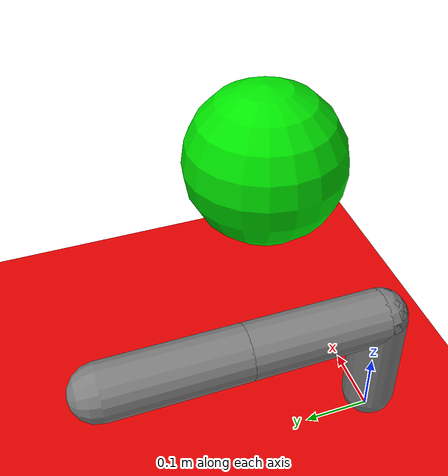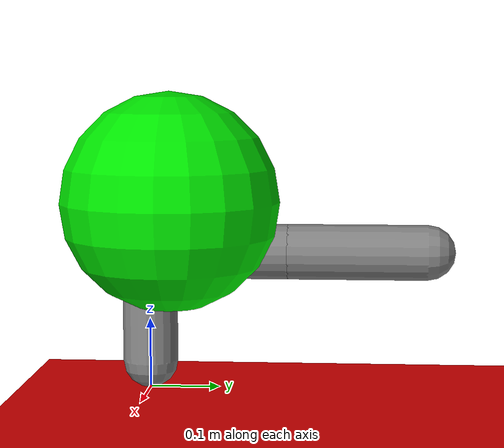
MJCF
<mujoco>
    <compiler inertiafromgeom='true' angle='degree'/>
    <option timestep='0.005'>
        <flags solverstat="enable" energy="enable"/>
    </option>

     <default>
        <position ctrlrange='-2 2' ctrllimited='true'/>
        <joint damping='0.5' armature='1.0068' />
    </default>

    <worldbody>
        <light diffuse=".5 .5 .5" pos="0 0 3" dir="0 0 -1"/>
        <geom type="plane" size="1.1 1.1 1.1" rgba=".9 0 0 1"/>
        <body name='finger' pos="0.0 0.0 0.0">
            <joint name='finger1' type='hinge' pos='0 0 0' axis='0 0 1' range='-80 80' stiffness='0' />
            <geom name='seg1' type='capsule' fromto='0 0 0.039 .0 .0 .2'  size='0.04 0.16' />
            <body name='segment2' pos='0 0 .2'>
                <joint name='finger2' type='hinge' pos='0 0 0' axis='0 0 1' range='-80 80' stiffness='0' />
                <geom name='seg2' type='capsule' fromto='0 0 0 .0 .2 -.0' size='0.04 0.16' />
                <body name='segment3' pos='0.0 0.2 .0' >
                    <joint name='finger3' type='hinge' pos='0 0 0' axis='0 0 1' range='-80 80' stiffness='0'/>
                    <geom name='seg3' type='capsule' fromto='0 0 0 .0 .2 -.0' size='0.04 0.16' />
                </body>
            </body>
        </body>

         <body name="cube" pos="0.28 0.07 0.3">
            <joint type="free" armature='0.0' damping='0' />
            <geom type="sphere"  size=" .135" rgba="0 0.9 0.0 1" mass="0.01"/>
        </body>

    </worldbody>

    <actuator>
        <position name='finger1' kp='20' joint='finger1' />
        <position name='finger2' kp='20' joint='finger2' />
        <position name='finger3' kp='20' joint='finger3' />
    </actuator>
</mujoco>
